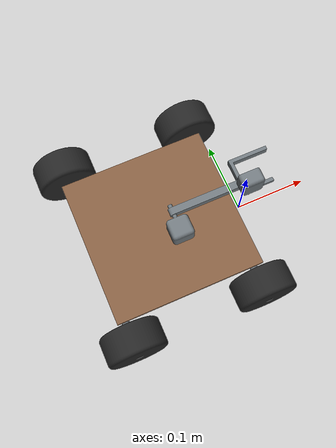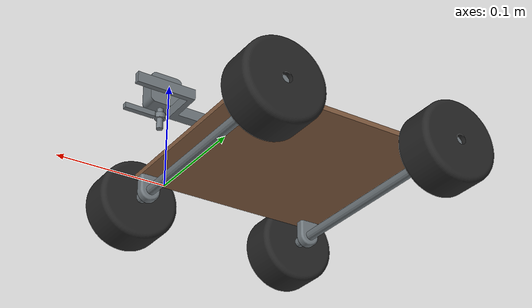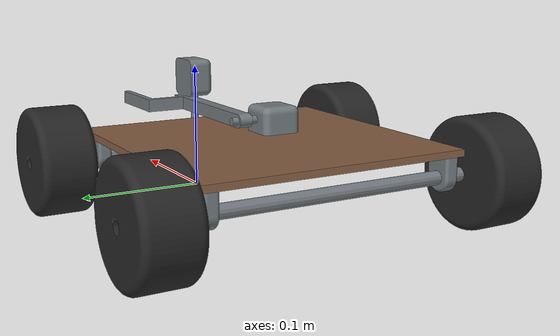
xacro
<?xml version="1.0" ?>
<robot name="pnp_bot" xmlns:xacro="http://www.ros.org/wiki/xacro">

<xacro:include filename="$(find pnp_bot_description)/urdf/materials.xacro" />
<xacro:include filename="$(find pnp_bot_description)/urdf/pnp_bot.trans" />
<xacro:include filename="$(find pnp_bot_description)/urdf/pnp_bot.gazebo" />

<link name="base_link">
  <inertial>
    <origin rpy="0 0 0" xyz="-0.11848301617323981 0.002730013867984873 0.05793995594569746"/>
    <mass value="1.5699999999999996"/>
    <inertia ixx="0.005237" ixy="-0.0" ixz="0.0" iyy="0.005237" iyz="0.0" izz="0.010467"/>
  </inertial>
  <visual>
    <origin rpy="0 0 0" xyz="0 0 0"/>
    <geometry>
      <mesh filename="package://pnp_bot_description/meshes/base_link.stl" scale="0.001 0.001 0.001"/>
    </geometry>
    <material name="wood"/>
  </visual>
  <collision>
    <origin rpy="0 0 0" xyz="0 0 0"/>
    <geometry>
      <mesh filename="package://pnp_bot_description/meshes/base_link.stl" scale="0.001 0.001 0.001"/>
    </geometry>
  </collision>
</link>

<link name="shaft_clamp_2__1">
  <inertial>
    <origin rpy="0 0 0" xyz="-0.01000001194044622 1.3867984677284895e-08 -0.010719946113695242"/>
    <mass value="0.028906595141109794"/>
    <inertia ixx="2e-06" ixy="-0.0" ixz="0.0" iyy="2e-06" iyz="0.0" izz="1e-06"/>
  </inertial>
  <visual>
    <origin rpy="0 0 0" xyz="0.018483 -0.09273 -0.05544"/>
    <geometry>
      <mesh filename="package://pnp_bot_description/meshes/shaft_clamp_2__1.stl" scale="0.001 0.001 0.001"/>
    </geometry>
    <material name="steel"/>
  </visual>
  <collision>
    <origin rpy="0 0 0" xyz="0.018483 -0.09273 -0.05544"/>
    <geometry>
      <mesh filename="package://pnp_bot_description/meshes/shaft_clamp_2__1.stl" scale="0.001 0.001 0.001"/>
    </geometry>
  </collision>
</link>

<link name="shaft_clamp_4_1">
  <inertial>
    <origin rpy="0 0 0" xyz="0.009999979593966118 1.3867984233195685e-08 -0.01071994611369547"/>
    <mass value="0.028906595141109794"/>
    <inertia ixx="2e-06" ixy="0.0" ixz="-0.0" iyy="2e-06" iyz="0.0" izz="1e-06"/>
  </inertial>
  <visual>
    <origin rpy="0 0 0" xyz="0.218483 -0.09273 -0.05544"/>
    <geometry>
      <mesh filename="package://pnp_bot_description/meshes/shaft_clamp_4_1.stl" scale="0.001 0.001 0.001"/>
    </geometry>
    <material name="steel"/>
  </visual>
  <collision>
    <origin rpy="0 0 0" xyz="0.218483 -0.09273 -0.05544"/>
    <geometry>
      <mesh filename="package://pnp_bot_description/meshes/shaft_clamp_4_1.stl" scale="0.001 0.001 0.001"/>
    </geometry>
  </collision>
</link>

<link name="shaft_clamp_3_1">
  <inertial>
    <origin rpy="0 0 0" xyz="0.009999988059557069 1.3867984843818348e-08 -0.010719946113695845"/>
    <mass value="0.028906595141109794"/>
    <inertia ixx="2e-06" ixy="0.0" ixz="0.0" iyy="2e-06" iyz="0.0" izz="1e-06"/>
  </inertial>
  <visual>
    <origin rpy="0 0 0" xyz="0.218483 0.08727 -0.05544"/>
    <geometry>
      <mesh filename="package://pnp_bot_description/meshes/shaft_clamp_3_1.stl" scale="0.001 0.001 0.001"/>
    </geometry>
    <material name="steel"/>
  </visual>
  <collision>
    <origin rpy="0 0 0" xyz="0.218483 0.08727 -0.05544"/>
    <geometry>
      <mesh filename="package://pnp_bot_description/meshes/shaft_clamp_3_1.stl" scale="0.001 0.001 0.001"/>
    </geometry>
  </collision>
</link>

<link name="_shaft_clamp_1__1">
  <inertial>
    <origin rpy="0 0 0" xyz="-0.010000011940445499 1.3867985079740741e-08 -0.010719946113695727"/>
    <mass value="0.028906595141109794"/>
    <inertia ixx="2e-06" ixy="-0.0" ixz="0.0" iyy="2e-06" iyz="0.0" izz="1e-06"/>
  </inertial>
  <visual>
    <origin rpy="0 0 0" xyz="0.018483 0.08727 -0.05544"/>
    <geometry>
      <mesh filename="package://pnp_bot_description/meshes/shaft_clamp_1__1.stl" scale="0.001 0.001 0.001"/>
    </geometry>
    <material name="steel"/>
  </visual>
  <collision>
    <origin rpy="0 0 0" xyz="0.018483 0.08727 -0.05544"/>
    <geometry>
      <mesh filename="package://pnp_bot_description/meshes/shaft_clamp_1__1.stl" scale="0.001 0.001 0.001"/>
    </geometry>
  </collision>
</link>

<link name="shaft_1_1">
  <inertial>
    <origin rpy="0 0 0" xyz="-9.114612523064558e-09 -0.13999998613201523 -4.876005163523267e-08"/>
    <mass value="0.1726305163147591"/>
    <inertia ixx="0.001129" ixy="-0.0" ixz="0.0" iyy="2e-06" iyz="0.0" izz="0.001129"/>
  </inertial>
  <visual>
    <origin rpy="0 0 0" xyz="0.028483 -0.14273 -0.04044"/>
    <geometry>
      <mesh filename="package://pnp_bot_description/meshes/shaft_1_1.stl" scale="0.001 0.001 0.001"/>
    </geometry>
    <material name="steel"/>
  </visual>
  <collision>
    <origin rpy="0 0 0" xyz="0.028483 -0.14273 -0.04044"/>
    <geometry>
      <mesh filename="package://pnp_bot_description/meshes/shaft_1_1.stl" scale="0.001 0.001 0.001"/>
    </geometry>
  </collision>
</link>

<link name="shaft_2__1">
  <inertial>
    <origin rpy="0 0 0" xyz="-2.323186720776249e-08 -0.1399999861320157 -4.876005179482723e-08"/>
    <mass value="0.1726305163147591"/>
    <inertia ixx="0.001129" ixy="-0.0" ixz="0.0" iyy="2e-06" iyz="0.0" izz="0.001129"/>
  </inertial>
  <visual>
    <origin rpy="0 0 0" xyz="0.208483 -0.14273 -0.04044"/>
    <geometry>
      <mesh filename="package://pnp_bot_description/meshes/shaft_2__1.stl" scale="0.001 0.001 0.001"/>
    </geometry>
    <material name="steel"/>
  </visual>
  <collision>
    <origin rpy="0 0 0" xyz="0.208483 -0.14273 -0.04044"/>
    <geometry>
      <mesh filename="package://pnp_bot_description/meshes/shaft_2__1.stl" scale="0.001 0.001 0.001"/>
    </geometry>
  </collision>
</link>

<link name="wheel_1_1">
  <inertial>
    <origin rpy="0 0 0" xyz="-9.114604560683803e-09 -0.01999998613201498 -4.876005131604355e-08"/>
    <mass value="1.5330961087112107"/>
    <inertia ixx="0.000815" ixy="-0.0" ixz="0.0" iyy="0.001231" iyz="0.0" izz="0.000815"/>
  </inertial>
  <visual>
    <origin rpy="0 0 0" xyz="0.028483 -0.14773 -0.04044"/>
    <geometry>
      <mesh filename="package://pnp_bot_description/meshes/wheel_1_1.stl" scale="0.001 0.001 0.001"/>
    </geometry>
    <material name="rubber"/>
  </visual>
  <collision>
    <origin rpy="0 0 0" xyz="0.028483 -0.14773 -0.04044"/>
    <geometry>
      <mesh filename="package://pnp_bot_description/meshes/wheel_1_1.stl" scale="0.001 0.001 0.001"/>
    </geometry>
  </collision>
</link>

<link name="wheel_3_1">
  <inertial>
    <origin rpy="0 0 0" xyz="-2.3231858742311928e-08 -0.019999986132015618 -4.8760051607477095e-08"/>
    <mass value="1.5330961087112107"/>
    <inertia ixx="0.000815" ixy="-0.0" ixz="0.0" iyy="0.001231" iyz="0.0" izz="0.000815"/>
  </inertial>
  <visual>
    <origin rpy="0 0 0" xyz="0.208483 -0.14773 -0.04044"/>
    <geometry>
      <mesh filename="package://pnp_bot_description/meshes/wheel_3_1.stl" scale="0.001 0.001 0.001"/>
    </geometry>
    <material name="rubber"/>
  </visual>
  <collision>
    <origin rpy="0 0 0" xyz="0.208483 -0.14773 -0.04044"/>
    <geometry>
      <mesh filename="package://pnp_bot_description/meshes/wheel_3_1.stl" scale="0.001 0.001 0.001"/>
    </geometry>
  </collision>
</link>

<link name="wheel_2_1">
  <inertial>
    <origin rpy="0 0 0" xyz="-9.1146203293202e-09 0.020000013867984875 -4.8760051891971745e-08"/>
    <mass value="1.5330961087112107"/>
    <inertia ixx="0.000815" ixy="-0.0" ixz="0.0" iyy="0.001231" iyz="0.0" izz="0.000815"/>
  </inertial>
  <visual>
    <origin rpy="0 0 0" xyz="0.028483 0.14227 -0.04044"/>
    <geometry>
      <mesh filename="package://pnp_bot_description/meshes/wheel_2_1.stl" scale="0.001 0.001 0.001"/>
    </geometry>
    <material name="rubber"/>
  </visual>
  <collision>
    <origin rpy="0 0 0" xyz="0.028483 0.14227 -0.04044"/>
    <geometry>
      <mesh filename="package://pnp_bot_description/meshes/wheel_2_1.stl" scale="0.001 0.001 0.001"/>
    </geometry>
  </collision>
</link>

<link name="wheel_4_1">
  <inertial>
    <origin rpy="0 0 0" xyz="-2.3231875034834815e-08 0.02000001386798439 -4.87600520585052e-08"/>
    <mass value="1.5330961087112107"/>
    <inertia ixx="0.000815" ixy="0.0" ixz="0.0" iyy="0.001231" iyz="0.0" izz="0.000815"/>
  </inertial>
  <visual>
    <origin rpy="0 0 0" xyz="0.208483 0.14227 -0.04044"/>
    <geometry>
      <mesh filename="package://pnp_bot_description/meshes/wheel_4_1.stl" scale="0.001 0.001 0.001"/>
    </geometry>
    <material name="rubber"/>
  </visual>
  <collision>
    <origin rpy="0 0 0" xyz="0.208483 0.14227 -0.04044"/>
    <geometry>
      <mesh filename="package://pnp_bot_description/meshes/wheel_4_1.stl" scale="0.001 0.001 0.001"/>
    </geometry>
  </collision>
</link>

<link name="motor_1_1">
  <inertial>
    <origin rpy="0 0 0" xyz="-1.6180410775112897e-08 0.000804350602864639 0.009717866357837661"/>
    <mass value="0.13797301015309038"/>
    <inertia ixx="1.6e-05" ixy="0.0" ixz="0.0" iyy="1.4e-05" iyz="-0.0" izz="2.2e-05"/>
  </inertial>
  <visual>
    <origin rpy="0 0 0" xyz="0.098483 0.01727 -0.06044"/>
    <geometry>
      <mesh filename="package://pnp_bot_description/meshes/motor_1_1.stl" scale="0.001 0.001 0.001"/>
    </geometry>
    <material name="steel"/>
  </visual>
  <collision>
    <origin rpy="0 0 0" xyz="0.098483 0.01727 -0.06044"/>
    <geometry>
      <mesh filename="package://pnp_bot_description/meshes/motor_1_1.stl" scale="0.001 0.001 0.001"/>
    </geometry>
  </collision>
</link>

<link name="arm__1">
  <inertial>
    <origin rpy="0 0 0" xyz="0.06788940014113293 0.002884517721474718 -4.390529109721264e-08"/>
    <mass value="0.11076315215619528"/>
    <inertia ixx="2.1e-05" ixy="-4.3e-05" ixz="-0.0" iyy="0.000175" iyz="0.0" izz="0.000194"/>
  </inertial>
  <visual>
    <origin rpy="0 0 0" xyz="0.098483 -0.01273 -0.07044"/>
    <geometry>
      <mesh filename="package://pnp_bot_description/meshes/arm__1.stl" scale="0.001 0.001 0.001"/>
    </geometry>
    <material name="steel"/>
  </visual>
  <collision>
    <origin rpy="0 0 0" xyz="0.098483 -0.01273 -0.07044"/>
    <geometry>
      <mesh filename="package://pnp_bot_description/meshes/arm__1.stl" scale="0.001 0.001 0.001"/>
    </geometry>
  </collision>
</link>

<link name="motor_2_1">
  <inertial>
    <origin rpy="0 0 0" xyz="-1.6929162989856583e-08 -0.009717896544152166 0.014195619359829312"/>
    <mass value="0.13797301015309038"/>
    <inertia ixx="1.6e-05" ixy="0.0" ixz="0.0" iyy="2.2e-05" iyz="-0.0" izz="1.4e-05"/>
  </inertial>
  <visual>
    <origin rpy="0 0 0" xyz="-0.006517 -0.00773 -0.07544"/>
    <geometry>
      <mesh filename="package://pnp_bot_description/meshes/motor_2_1.stl" scale="0.001 0.001 0.001"/>
    </geometry>
    <material name="steel"/>
  </visual>
  <collision>
    <origin rpy="0 0 0" xyz="-0.006517 -0.00773 -0.07544"/>
    <geometry>
      <mesh filename="package://pnp_bot_description/meshes/motor_2_1.stl" scale="0.001 0.001 0.001"/>
    </geometry>
  </collision>
</link>

<link name="gripper_1">
  <inertial>
    <origin rpy="0 0 0" xyz="0.015062531918098901 1.371897654376189e-08 0.0024999560947090854"/>
    <mass value="0.00779303520976114"/>
    <inertia ixx="0.0" ixy="-0.0" ixz="0.0" iyy="1e-06" iyz="0.0" izz="1e-06"/>
  </inertial>
  <visual>
    <origin rpy="0 0 0" xyz="-0.006517 0.00227 -0.06544"/>
    <geometry>
      <mesh filename="package://pnp_bot_description/meshes/gripper_1.stl" scale="0.001 0.001 0.001"/>
    </geometry>
    <material name="steel"/>
  </visual>
  <collision>
    <origin rpy="0 0 0" xyz="-0.006517 0.00227 -0.06544"/>
    <geometry>
      <mesh filename="package://pnp_bot_description/meshes/gripper_1.stl" scale="0.001 0.001 0.001"/>
    </geometry>
  </collision>
</link>

<joint name="Rigid16" type="fixed">
  <origin rpy="0 0 0" xyz="-0.018483 0.09273 0.05544"/>
  <parent link="base_link"/>
  <child link="shaft_clamp_2__1"/>
</joint>

<joint name="Rigid17" type="fixed">
  <origin rpy="0 0 0" xyz="-0.218483 0.09273 0.05544"/>
  <parent link="base_link"/>
  <child link="shaft_clamp_4_1"/>
</joint>

<joint name="Rigid18" type="fixed">
  <origin rpy="0 0 0" xyz="-0.218483 -0.08727 0.05544"/>
  <parent link="base_link"/>
  <child link="shaft_clamp_3_1"/>
</joint>

<joint name="Rigid19" type="fixed">
  <origin rpy="0 0 0" xyz="-0.018483 -0.08727 0.05544"/>
  <parent link="base_link"/>
  <child link="_shaft_clamp_1__1"/>
</joint>

<joint name="Rigid20" type="fixed">
  <origin rpy="0 0 0" xyz="-0.01 0.05 -0.015"/>
  <parent link="shaft_clamp_2__1"/>
  <child link="shaft_1_1"/>
</joint>

<joint name="Rigid21" type="fixed">
  <origin rpy="0 0 0" xyz="0.01 0.05 -0.015"/>
  <parent link="shaft_clamp_4_1"/>
  <child link="shaft_2__1"/>
</joint>

<joint name="Rev22" type="continuous">
  <origin rpy="0 0 0" xyz="0.0 0.005 0.0"/>
  <parent link="shaft_1_1"/>
  <child link="wheel_1_1"/>
  <axis xyz="-0.0 1.0 0.0"/>
</joint>

<joint name="Rev23" type="continuous">
  <origin rpy="0 0 0" xyz="0.0 0.005 0.0"/>
  <parent link="shaft_2__1"/>
  <child link="wheel_3_1"/>
  <axis xyz="-0.0 1.0 0.0"/>
</joint>

<joint name="Rev24" type="continuous">
  <origin rpy="0 0 0" xyz="0.0 -0.285 0.0"/>
  <parent link="shaft_1_1"/>
  <child link="wheel_2_1"/>
  <axis xyz="0.0 -1.0 -0.0"/>
</joint>

<joint name="Rev25" type="continuous">
  <origin rpy="0 0 0" xyz="0.0 -0.285 0.0"/>
  <parent link="shaft_2__1"/>
  <child link="wheel_4_1"/>
  <axis xyz="-0.0 1.0 0.0"/>
</joint>

<joint name="Rigid26" type="fixed">
  <origin rpy="0 0 0" xyz="-0.098483 -0.01727 0.06044"/>
  <parent link="base_link"/>
  <child link="motor_1_1"/>
</joint>

<joint name="Rev27" type="revolute">
  <origin rpy="0 0 0" xyz="0.0 0.03 0.01"/>
  <parent link="motor_1_1"/>
  <child link="arm__1"/>
  <axis xyz="-0.0 1.0 -0.0"/>
  <limit effort="100" lower="-3.141593" upper="1.0" velocity="100"/>
</joint>

<joint name="Rigid28" type="fixed">
  <origin rpy="0 0 0" xyz="0.105 -0.005 0.005"/>
  <parent link="arm__1"/>
  <child link="motor_2_1"/>
</joint>

<joint name="Rev29" type="revolute">
  <origin rpy="0 0 0" xyz="0.0 -0.01 -0.01"/>
  <parent link="motor_2_1"/>
  <child link="gripper_1"/>
  <axis xyz="-0.0 -0.0 -1.0"/>
  <limit effort="100" lower="-1.0" upper="3.141593" velocity="100"/>
</joint>

</robot>

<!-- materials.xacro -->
<robot name="pnp_bot" xmlns:xacro="http://www.ros.org/wiki/xacro" >

<material name="silver">
  <color rgba="0.700 0.700 0.700 1.000"/>
</material>

<material name="rubber">
  <color rgba="0.149 0.149 0.149 1.000"/>
</material>

<material name="steel">
  <color rgba="0.4431 0.4745 0.4941 1.000"/>
</material>

<material name="wood">
  <color rgba="0.5216 0.3686 0.258 1.000"/>
</material>

</robot>

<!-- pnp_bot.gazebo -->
<robot name="pnp_bot" xmlns:xacro="http://www.ros.org/wiki/xacro" >

<!-- xacro properties begains -->>
<xacro:property name="wood" value="Gazebo/Wood" />
<xacro:property name="rubber" value="Gazebo/FlatBlack" />
<xacro:property name="steel" value="Gazebo/Grey" />
<xacro:property name="iron" value="Gazebo/Gold" />

<!--plugins begains-->>
<gazebo>
  <plugin filename="libgazebo_ros_control.so" name="control">
      <robotNamespace>/pnp_bot</robotNamespace>
  </plugin>
</gazebo>

<gazebo>
  <plugin name="differential_drive_controller" filename="libgazebo_ros_diff_drive.so">

    <!-- Plugin update rate in Hz -->
    <updateRate>${10}</updateRate>

    <!-- Name of left joint, defaults to `left_joint` -->
    <leftJoint>Rev24</leftJoint>
    <leftJoint>Rev25</leftJoint>

    <!-- Name of right joint, defaults to `right_joint` -->
    <rightJoint>Rev22</rightJoint>
    <rightJoint>Rev23</rightJoint>

    <!-- The distance from the center of one wheel to the other, in meters, defaults to 0.34 m -->
    <wheelSeparation>0.25</wheelSeparation>

    <!-- Diameter of the wheels, in meters, defaults to 0.15 m -->
    <wheelDiameter>0.08</wheelDiameter>

    <!-- Wheel acceleration, in rad/s^2, defaults to 0.0 rad/s^2 -->
    <wheelAcceleration>1.0</wheelAcceleration>

    <!-- Maximum torque which the wheels can produce, in Nm, defaults to 5 Nm -->
    <wheelTorque>50</wheelTorque>

    <!-- Topic to receive geometry_msgs/Twist message commands, defaults to `cmd_vel` -->
    <commandTopic>cmd_vel</commandTopic>

    <!-- Topic to publish nav_msgs/Odometry messages, defaults to `odom` -->
    <odometryTopic>odom</odometryTopic>

    <!-- Odometry frame, defaults to `odom` -->
    <odometryFrame>odom</odometryFrame>

    <!-- Robot frame to calculate odometry from, defaults to `base_footprint` -->
    <robotBaseFrame>base_link</robotBaseFrame>

    <!-- Odometry source, 0 for ENCODER, 1 for WORLD, defaults to WORLD -->
    <odometrySource>1</odometrySource>

    <!-- Set to true to publish transforms for the wheel links, defaults to false -->
    <publishWheelTF>true</publishWheelTF>

    <!-- Set to true to publish transforms for the odometry, defaults to true -->
    <publishOdom>true</publishOdom>

    <!-- Set to true to publish sensor_msgs/JointState on /joint_states for the wheel joints, defaults to false -->
    <publishWheelJointState>true</publishWheelJointState>

    <!-- Set to true to swap right and left wheels, defaults to true -->
    <legacyMode>false</legacyMode>
  </plugin>
</gazebo>

<!--materials and physics begains-->>
<gazebo reference="base_link">
  <material>${wood}</material>
  <mu1>0.2</mu1>
  <mu2>0.2</mu2>
  <selfCollide>true</selfCollide>
  <gravity>true</gravity>
</gazebo>

<gazebo reference="shaft_clamp_2__1">
  <material>${steel}</material>
  <mu1>0.2</mu1>
  <mu2>0.2</mu2>
  <selfCollide>true</selfCollide>
</gazebo>

<gazebo reference="shaft_clamp_4_1">
  <material>${steel}</material>
  <mu1>0.2</mu1>
  <mu2>0.2</mu2>
  <selfCollide>true</selfCollide>
</gazebo>

<gazebo reference="shaft_clamp_3_1">
  <material>${steel}</material>
  <mu1>0.2</mu1>
  <mu2>0.2</mu2>
  <selfCollide>true</selfCollide>
</gazebo>

<gazebo reference="_shaft_clamp_1__1">
  <material>${steel}</material>
  <mu1>0.2</mu1>
  <mu2>0.2</mu2>
  <selfCollide>true</selfCollide>
</gazebo>

<gazebo reference="shaft_1_1">
  <material>${steel}</material>
  <mu1>0.2</mu1>
  <mu2>0.2</mu2>
  <selfCollide>true</selfCollide>
</gazebo>

<gazebo reference="shaft_2__1">
  <material>${steel}</material>
  <mu1>0.2</mu1>
  <mu2>0.2</mu2>
  <selfCollide>true</selfCollide>
</gazebo>

<gazebo reference="wheel_1_1">
  <material>${rubber}</material>
  <mu1>0.2</mu1>
  <mu2>0.2</mu2>
  <selfCollide>true</selfCollide>
</gazebo>

<gazebo reference="wheel_3_1">
  <material>${rubber}</material>
  <mu1>0.2</mu1>
  <mu2>0.2</mu2>
  <selfCollide>true</selfCollide>
</gazebo>

<gazebo reference="wheel_2_1">
  <material>${rubber}</material>
  <mu1>0.2</mu1>
  <mu2>0.2</mu2>
  <selfCollide>true</selfCollide>
</gazebo>

<gazebo reference="wheel_4_1">
  <material>${rubber}</material>
  <mu1>0.2</mu1>
  <mu2>0.2</mu2>
  <selfCollide>true</selfCollide>
</gazebo>

<gazebo reference="motor_1_1">
  <material>${iron}</material>
  <mu1>0.2</mu1>
  <mu2>0.2</mu2>
  <selfCollide>true</selfCollide>
</gazebo>

<gazebo reference="arm__1">
  <material>${iron}</material>
  <mu1>0.2</mu1>
  <mu2>0.2</mu2>
  <selfCollide>true</selfCollide>
</gazebo>

<gazebo reference="motor_2_1">
  <material>${iron}</material>
  <mu1>0.2</mu1>
  <mu2>0.2</mu2>
  <selfCollide>true</selfCollide>
</gazebo>

<gazebo reference="gripper_1">
  <material>${iron}</material>
  <mu1>0.2</mu1>
  <mu2>0.2</mu2>
  <selfCollide>true</selfCollide>
</gazebo>

</robot>
